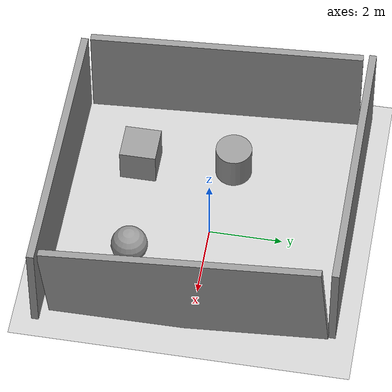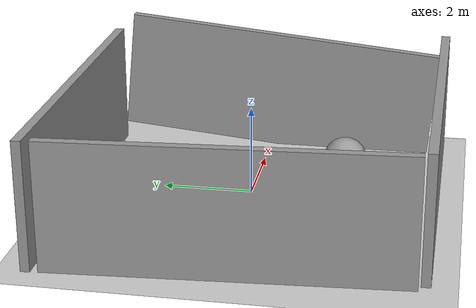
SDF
<sdf version="1.6">
 <world name="default">
  <light name="sun" type="directional">
   <pose>0 0 10 0 -0 0</pose>
   <diffuse>0.8 0.8 0.8 1</diffuse>
   <specular>0.2 0.2 0.2 1</specular>
   <attenuation>
    <range>1000</range>
    <constant>0.9</constant>
    <linear>0.01</linear>
    <quadratic>0.001</quadratic>
   </attenuation>
   <direction>-0.5 0.1 -0.9</direction>
  </light>
  <model name="ground_plane">
   <static>1</static>
   <link name="link">
    <collision name="collision">
     <geometry><plane><normal>0 0 1</normal><size>100 100</size></plane></geometry>
     <surface><friction><ode><mu>100</mu><mu2>50</mu2></ode></friction></surface>
    </collision>
    <visual name="visual">
     <cast_shadows>0</cast_shadows>
     <geometry><plane><normal>0 0 1</normal><size>100 100</size></plane></geometry>
     <material>
      <script><uri>file://media/materials/scripts/gazebo.material</uri><name>Gazebo/Grey</name></script>
     </material>
    </visual>
   </link>
  </model>
  <gravity>0 0 -9.8</gravity>
  <magnetic_field>6e-06 2.3e-05 -4.2e-05</magnetic_field>
  <atmosphere type="adiabatic"/>
  <physics name="default_physics" default="0" type="ode">
   <max_step_size>0.001</max_step_size>
   <real_time_factor>1</real_time_factor>
   <real_time_update_rate>1000</real_time_update_rate>
  </physics>
  <scene><ambient>0.4 0.4 0.4 1</ambient><background>0.7 0.7 0.7 1</background><shadows>1</shadows></scene>
  <spherical_coordinates>
   <surface_model>EARTH_WGS84</surface_model>
   <latitude_deg>0</latitude_deg>
   <longitude_deg>0</longitude_deg>
   <elevation>0</elevation>
   <heading_deg>0</heading_deg>
  </spherical_coordinates>
  <model name="grey_wall">
   <static>1</static>
   <link name="link">
    <pose>0 0 1.4 0 -0 0</pose>
    <collision name="collision"><geometry><box><size>7.5 0.2 2.8</size></box></geometry></collision>
    <visual name="visual">
     <cast_shadows>0</cast_shadows>
     <geometry><box><size>7.5 0.2 2.8</size></box></geometry>
     <material>
      <script>
       <uri>model://grey_wall/materials/scripts</uri>
       <uri>model://grey_wall/materials/textures</uri>
       <name>vrc/grey_wall</name>
      </script>
     </material>
    </visual>
   </link>
   <pose>-0.163099 -4.11804 0 0 -0 0</pose>
  </model>
  <model name="grey_wall_0">
   <static>1</static>
   <link name="link">
    <pose>0 0 1.4 0 -0 0</pose>
    <collision name="collision"><geometry><box><size>7.5 0.2 2.8</size></box></geometry></collision>
    <visual name="visual">
     <cast_shadows>0</cast_shadows>
     <geometry><box><size>7.5 0.2 2.8</size></box></geometry>
     <material>
      <script>
       <uri>model://grey_wall/materials/scripts</uri>
       <uri>model://grey_wall/materials/textures</uri>
       <name>vrc/grey_wall</name>
      </script>
     </material>
    </visual>
   </link>
   <pose>-0.850504 3.76327 0 0 -0 0</pose>
  </model>
  <model name="grey_wall_1">
   <static>1</static>
   <link name="link">
    <pose>0 0 1.4 0 -0 0</pose>
    <collision name="collision"><geometry><box><size>7.5 0.2 2.8</size></box></geometry></collision>
    <visual name="visual">
     <cast_shadows>0</cast_shadows>
     <geometry><box><size>7.5 0.2 2.8</size></box></geometry>
     <material>
      <script>
       <uri>model://grey_wall/materials/scripts</uri>
       <uri>model://grey_wall/materials/textures</uri>
       <name>vrc/grey_wall</name>
      </script>
     </material>
    </visual>
   </link>
   <pose>-4.23518 -0.227428 0 0 0 -1.5067</pose>
  </model>
  <model name="grey_wall_2">
   <static>1</static>
   <link name="link">
    <pose>0 0 1.4 0 -0 0</pose>
    <collision name="collision"><geometry><box><size>7.5 0.2 2.8</size></box></geometry></collision>
    <visual name="visual">
     <cast_shadows>0</cast_shadows>
     <geometry><box><size>7.5 0.2 2.8</size></box></geometry>
     <material>
      <script>
       <uri>model://grey_wall/materials/scripts</uri>
       <uri>model://grey_wall/materials/textures</uri>
       <name>vrc/grey_wall</name>
      </script>
     </material>
    </visual>
   </link>
   <pose>3.11284 -0.0412 0 0 0.096661 -1.56521</pose>
  </model>
  <model name="unit_sphere">
   <pose>1.10914 -2.00787 0.5 0 -0 0</pose>
   <link name="link">
    <inertial>
     <mass>1</mass>
     <inertia><ixx>0.1</ixx><ixy>0</ixy><ixz>0</ixz><iyy>0.1</iyy><iyz>0</iyz><izz>0.1</izz></inertia>
    </inertial>
    <collision name="collision"><geometry><sphere><radius>0.5</radius></sphere></geometry></collision>
    <visual name="visual">
     <geometry><sphere><radius>0.5</radius></sphere></geometry>
     <material>
      <script><name>Gazebo/Grey</name><uri>file://media/materials/scripts/gazebo.material</uri></script>
     </material>
    </visual>
   </link>
  </model>
  <model name="unit_cylinder">
   <pose>-2.17171 0.318027 0.499993 -3e-06 -4e-06 -0</pose>
   <link name="link">
    <inertial>
     <mass>1</mass>
     <inertia><ixx>0.145833</ixx><ixy>0</ixy><ixz>0</ixz><iyy>0.145833</iyy><iyz>0</iyz><izz>0.125</izz></inertia>
    </inertial>
    <collision name="collision">
     <geometry><cylinder><radius>0.5</radius><length>1</length></cylinder></geometry>
    </collision>
    <visual name="visual">
     <geometry><cylinder><radius>0.5</radius><length>1</length></cylinder></geometry>
     <material>
      <script><name>Gazebo/Grey</name><uri>file://media/materials/scripts/gazebo.material</uri></script>
     </material>
    </visual>
   </link>
  </model>
  <model name="unit_box">
   <pose>-1.96948 -2.2496 0.5 0 -0 0</pose>
   <link name="link">
    <inertial>
     <mass>1</mass>
     <inertia>
      <ixx>0.166667</ixx>
      <ixy>0</ixy>
      <ixz>0</ixz>
      <iyy>0.166667</iyy>
      <iyz>0</iyz>
      <izz>0.166667</izz>
     </inertia>
    </inertial>
    <collision name="collision"><geometry><box><size>1 1 1</size></box></geometry></collision>
    <visual name="visual">
     <geometry><box><size>1 1 1</size></box></geometry>
     <material>
      <script><name>Gazebo/Grey</name><uri>file://media/materials/scripts/gazebo.material</uri></script>
     </material>
    </visual>
   </link>
  </model>
 </world>
</sdf>
